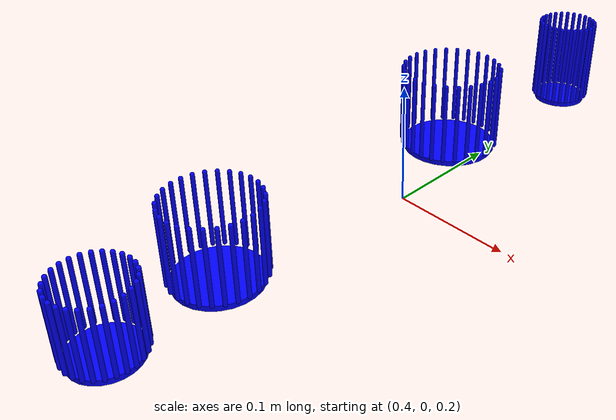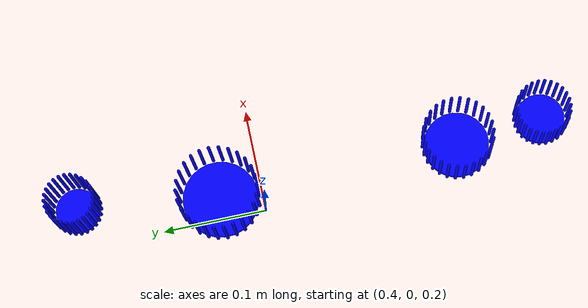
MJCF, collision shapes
<mujoco model="multi_cup_scene">

    <default>
        <default class="cup_collision">
        <geom
            contype="1" conaffinity="1"
            friction="0.2 0.005 0.0001"
            solref="0.01 1"
            solimp="0.95 0.99 0.001 0.5 2"
            condim="3"
            margin="0"
            gap="0"
            rgba="0 0 1 0.2"/>
        </default>
    </default>

  <asset>
    <material name="cup_red" rgba="0.85 0.20 0.20 1"/>
    <mesh name="cup_mesh_1" file="/path/to/Intervention_IL_AR/intervene_base/mujoco_scenes/cups/cup_nontextured.stl" scale="0.9 0.9 0.9"/>
    <material name="cup_green" rgba="0.20 0.75 0.30 1"/>
    <mesh name="cup_mesh_2" file="/path/to/Intervention_IL_AR/intervene_base/mujoco_scenes/cups/cup_nontextured.stl" scale="1.2 1.2 1"/>
    <material name="cup_blue" rgba="0.20 0.45 0.90 1"/>
    <mesh name="cup_mesh_3" file="/path/to/Intervention_IL_AR/intervene_base/mujoco_scenes/cups/cup_nontextured.stl" scale="1.4 1.4 1.1"/>
    <material name="cup_yellow" rgba="0.95 0.80 0.20 1"/>
    <mesh name="cup_mesh_4" file="/path/to/Intervention_IL_AR/intervene_base/mujoco_scenes/cups/cup_nontextured.stl" scale="0.8 0.8 1.15"/>
  </asset>

  <worldbody>
    <body name="cup1" pos="0.45 -0.22 0.24">
      <joint name="cup1_free" type="free"/>
      <geom name="cup1_visual" type="mesh" mesh="cup_mesh_1" material="cup_red" contype="0" conaffinity="0" pos="0 0 0" quat="1 0 0 0"/>
      <geom name="cup1_bottom" type="cylinder" pos="-0.0247487 -0.0512338 0.00143985" quat="0.889113 -0.0195101 -0.000219579 0.457272" size="0.0234366 0.002" class="cup_collision"/>
      <geom name="cup1_wallcap_00" type="capsule" pos="-0.010747 -0.0299984 0.0287677" quat="0.889113 -0.0195101 -0.000219579 0.457272" size="0.0015 0.0242842" class="cup_collision"/>
      <geom name="cup1_wallcap_01" type="capsule" pos="-0.0160211 -0.0271201 0.0285721" quat="0.889113 -0.0195101 -0.000219579 0.457272" size="0.0015 0.0242842" class="cup_collision"/>
      <geom name="cup1_wallcap_02" type="capsule" pos="-0.0218319 -0.0255875 0.0284132" quat="0.889113 -0.0195101 -0.000219579 0.457272" size="0.0015 0.0242842" class="cup_collision"/>
      <geom name="cup1_wallcap_03" type="capsule" pos="-0.0278416 -0.0254897 0.0283002" quat="0.889113 -0.0195101 -0.000219579 0.457272" size="0.0015 0.0242842" class="cup_collision"/>
      <geom name="cup1_wallcap_04" type="capsule" pos="-0.033701 -0.0268324 0.0282396" quat="0.889113 -0.0195101 -0.000219579 0.457272" size="0.0015 0.0242842" class="cup_collision"/>
      <geom name="cup1_wallcap_05" type="capsule" pos="-0.0390695 -0.0295374 0.028235" quat="0.889113 -0.0195101 -0.000219579 0.457272" size="0.0015 0.0242842" class="cup_collision"/>
      <geom name="cup1_wallcap_06" type="capsule" pos="-0.0436353 -0.0334477 0.0282867" quat="0.889113 -0.0195101 -0.000219579 0.457272" size="0.0015 0.0242842" class="cup_collision"/>
      <geom name="cup1_wallcap_07" type="capsule" pos="-0.0471328 -0.038336 0.0283916" quat="0.889113 -0.0195101 -0.000219579 0.457272" size="0.0015 0.0242842" class="cup_collision"/>
      <geom name="cup1_wallcap_08" type="capsule" pos="-0.0493589 -0.0439181 0.0285437" quat="0.889113 -0.0195101 -0.000219579 0.457272" size="0.0015 0.0242842" class="cup_collision"/>
      <geom name="cup1_wallcap_09" type="capsule" pos="-0.0501842 -0.0498697 0.0287341" quat="0.889113 -0.0195101 -0.000219579 0.457272" size="0.0015 0.0242842" class="cup_collision"/>
      <geom name="cup1_wallcap_10" type="capsule" pos="-0.0495607 -0.0558449 0.0289517" quat="0.889113 -0.0195101 -0.000219579 0.457272" size="0.0015 0.0242842" class="cup_collision"/>
      <geom name="cup1_wallcap_11" type="capsule" pos="-0.0475247 -0.0614964 0.0291839" quat="0.889113 -0.0195101 -0.000219579 0.457272" size="0.0015 0.0242842" class="cup_collision"/>
      <geom name="cup1_wallcap_12" type="capsule" pos="-0.0441944 -0.0664958 0.0294173" quat="0.889113 -0.0195101 -0.000219579 0.457272" size="0.0015 0.0242842" class="cup_collision"/>
      <geom name="cup1_wallcap_13" type="capsule" pos="-0.0397635 -0.0705525 0.0296381" quat="0.889113 -0.0195101 -0.000219579 0.457272" size="0.0015 0.0242842" class="cup_collision"/>
      <geom name="cup1_wallcap_14" type="capsule" pos="-0.0344894 -0.0734308 0.0298337" quat="0.889113 -0.0195101 -0.000219579 0.457272" size="0.0015 0.0242842" class="cup_collision"/>
      <geom name="cup1_wallcap_15" type="capsule" pos="-0.0286787 -0.0749633 0.0299927" quat="0.889113 -0.0195101 -0.000219579 0.457272" size="0.0015 0.0242842" class="cup_collision"/>
      <geom name="cup1_wallcap_16" type="capsule" pos="-0.022669 -0.0750612 0.0301057" quat="0.889113 -0.0195101 -0.000219579 0.457272" size="0.0015 0.0242842" class="cup_collision"/>
      <geom name="cup1_wallcap_17" type="capsule" pos="-0.0168096 -0.0737185 0.0301663" quat="0.889113 -0.0195101 -0.000219579 0.457272" size="0.0015 0.0242842" class="cup_collision"/>
      <geom name="cup1_wallcap_18" type="capsule" pos="-0.011441 -0.0710135 0.0301709" quat="0.889113 -0.0195101 -0.000219579 0.457272" size="0.0015 0.0242842" class="cup_collision"/>
      <geom name="cup1_wallcap_19" type="capsule" pos="-0.00687528 -0.0671032 0.0301192" quat="0.889113 -0.0195101 -0.000219579 0.457272" size="0.0015 0.0242842" class="cup_collision"/>
      <geom name="cup1_wallcap_20" type="capsule" pos="-0.00337774 -0.0622149 0.0300143" quat="0.889113 -0.0195101 -0.000219579 0.457272" size="0.0015 0.0242842" class="cup_collision"/>
      <geom name="cup1_wallcap_21" type="capsule" pos="-0.00115163 -0.0566328 0.0298622" quat="0.889113 -0.0195101 -0.000219579 0.457272" size="0.0015 0.0242842" class="cup_collision"/>
      <geom name="cup1_wallcap_22" type="capsule" pos="-0.000326341 -0.0506812 0.0296718" quat="0.889113 -0.0195101 -0.000219579 0.457272" size="0.0015 0.0242842" class="cup_collision"/>
      <geom name="cup1_wallcap_23" type="capsule" pos="-0.00094983 -0.044706 0.0294542" quat="0.889113 -0.0195101 -0.000219579 0.457272" size="0.0015 0.0242842" class="cup_collision"/>
      <geom name="cup1_wallcap_24" type="capsule" pos="-0.00298586 -0.0390545 0.029222" quat="0.889113 -0.0195101 -0.000219579 0.457272" size="0.0015 0.0242842" class="cup_collision"/>
      <geom name="cup1_wallcap_25" type="capsule" pos="-0.00631611 -0.0340551 0.0289886" quat="0.889113 -0.0195101 -0.000219579 0.457272" size="0.0015 0.0242842" class="cup_collision"/>
    </body>
    <body name="cup2" pos="0.45 -0.12 0.24">
      <joint name="cup2_free" type="free"/>
      <geom name="cup2_visual" type="mesh" mesh="cup_mesh_2" material="cup_green" contype="0" conaffinity="0" pos="0 0 0" quat="1 0 0 0"/>
      <geom name="cup2_bottom" type="cylinder" pos="-0.0331027 -0.0681141 0.00137357" quat="0.889113 -0.0195101 -0.000219579 0.457272" size="0.0309155 0.002" class="cup_collision"/>
      <geom name="cup2_wallcap_00" type="capsule" pos="-0.0148081 -0.040687 0.0317667" quat="0.889113 -0.0195101 -0.000219579 0.457272" size="0.0015 0.0274825" class="cup_collision"/>
      <geom name="cup2_wallcap_01" type="capsule" pos="-0.021664 -0.0369455 0.0315125" quat="0.889113 -0.0195101 -0.000219579 0.457272" size="0.0015 0.0274825" class="cup_collision"/>
      <geom name="cup2_wallcap_02" type="capsule" pos="-0.0292175 -0.0349532 0.0313059" quat="0.889113 -0.0195101 -0.000219579 0.457272" size="0.0015 0.0274825" class="cup_collision"/>
      <geom name="cup2_wallcap_03" type="capsule" pos="-0.0370296 -0.0348261 0.031159" quat="0.889113 -0.0195101 -0.000219579 0.457272" size="0.0015 0.0274825" class="cup_collision"/>
      <geom name="cup2_wallcap_04" type="capsule" pos="-0.0446463 -0.0365714 0.0310802" quat="0.889113 -0.0195101 -0.000219579 0.457272" size="0.0015 0.0274825" class="cup_collision"/>
      <geom name="cup2_wallcap_05" type="capsule" pos="-0.051625 -0.0400878 0.0310743" quat="0.889113 -0.0195101 -0.000219579 0.457272" size="0.0015 0.0274825" class="cup_collision"/>
      <geom name="cup2_wallcap_06" type="capsule" pos="-0.05756 -0.0451708 0.0311414" quat="0.889113 -0.0195101 -0.000219579 0.457272" size="0.0015 0.0274825" class="cup_collision"/>
      <geom name="cup2_wallcap_07" type="capsule" pos="-0.0621066 -0.0515251 0.0312778" quat="0.889113 -0.0195101 -0.000219579 0.457272" size="0.0015 0.0274825" class="cup_collision"/>
      <geom name="cup2_wallcap_08" type="capsule" pos="-0.0650003 -0.0587814 0.0314755" quat="0.889113 -0.0195101 -0.000219579 0.457272" size="0.0015 0.0274825" class="cup_collision"/>
      <geom name="cup2_wallcap_09" type="capsule" pos="-0.0660731 -0.066518 0.031723" quat="0.889113 -0.0195101 -0.000219579 0.457272" size="0.0015 0.0274825" class="cup_collision"/>
      <geom name="cup2_wallcap_10" type="capsule" pos="-0.0652626 -0.0742852 0.0320059" quat="0.889113 -0.0195101 -0.000219579 0.457272" size="0.0015 0.0274825" class="cup_collision"/>
      <geom name="cup2_wallcap_11" type="capsule" pos="-0.062616 -0.0816317 0.0323077" quat="0.889113 -0.0195101 -0.000219579 0.457272" size="0.0015 0.0274825" class="cup_collision"/>
      <geom name="cup2_wallcap_12" type="capsule" pos="-0.0582869 -0.0881305 0.0326111" quat="0.889113 -0.0195101 -0.000219579 0.457272" size="0.0015 0.0274825" class="cup_collision"/>
      <geom name="cup2_wallcap_13" type="capsule" pos="-0.0525271 -0.0934038 0.0328982" quat="0.889113 -0.0195101 -0.000219579 0.457272" size="0.0015 0.0274825" class="cup_collision"/>
      <geom name="cup2_wallcap_14" type="capsule" pos="-0.0456712 -0.0971454 0.0331525" quat="0.889113 -0.0195101 -0.000219579 0.457272" size="0.0015 0.0274825" class="cup_collision"/>
      <geom name="cup2_wallcap_15" type="capsule" pos="-0.0381177 -0.0991376 0.0333591" quat="0.889113 -0.0195101 -0.000219579 0.457272" size="0.0015 0.0274825" class="cup_collision"/>
      <geom name="cup2_wallcap_16" type="capsule" pos="-0.0303056 -0.0992648 0.033506" quat="0.889113 -0.0195101 -0.000219579 0.457272" size="0.0015 0.0274825" class="cup_collision"/>
      <geom name="cup2_wallcap_17" type="capsule" pos="-0.0226889 -0.0975194 0.0335847" quat="0.889113 -0.0195101 -0.000219579 0.457272" size="0.0015 0.0274825" class="cup_collision"/>
      <geom name="cup2_wallcap_18" type="capsule" pos="-0.0157102 -0.0940031 0.0335907" quat="0.889113 -0.0195101 -0.000219579 0.457272" size="0.0015 0.0274825" class="cup_collision"/>
      <geom name="cup2_wallcap_19" type="capsule" pos="-0.00977519 -0.08892 0.0335235" quat="0.889113 -0.0195101 -0.000219579 0.457272" size="0.0015 0.0274825" class="cup_collision"/>
      <geom name="cup2_wallcap_20" type="capsule" pos="-0.00522867 -0.0825657 0.0333872" quat="0.889113 -0.0195101 -0.000219579 0.457272" size="0.0015 0.0274825" class="cup_collision"/>
      <geom name="cup2_wallcap_21" type="capsule" pos="-0.00233493 -0.0753094 0.0331895" quat="0.889113 -0.0195101 -0.000219579 0.457272" size="0.0015 0.0274825" class="cup_collision"/>
      <geom name="cup2_wallcap_22" type="capsule" pos="-0.00126212 -0.0675729 0.032942" quat="0.889113 -0.0195101 -0.000219579 0.457272" size="0.0015 0.0274825" class="cup_collision"/>
      <geom name="cup2_wallcap_23" type="capsule" pos="-0.0020726 -0.0598056 0.0326591" quat="0.889113 -0.0195101 -0.000219579 0.457272" size="0.0015 0.0274825" class="cup_collision"/>
      <geom name="cup2_wallcap_24" type="capsule" pos="-0.00471927 -0.0524592 0.0323572" quat="0.889113 -0.0195101 -0.000219579 0.457272" size="0.0015 0.0274825" class="cup_collision"/>
      <geom name="cup2_wallcap_25" type="capsule" pos="-0.00904832 -0.0459604 0.0320539" quat="0.889113 -0.0195101 -0.000219579 0.457272" size="0.0015 0.0274825" class="cup_collision"/>
    </body>
    <body name="cup3" pos="0.45 0.12 0.24">
      <joint name="cup3_free" type="free"/>
      <geom name="cup3_visual" type="mesh" mesh="cup_mesh_3" material="cup_blue" contype="0" conaffinity="0" pos="0 0 0" quat="1 0 0 0"/>
      <geom name="cup3_bottom" type="cylinder" pos="-0.0386526 -0.0794044 0.00130939" quat="0.889113 -0.0195101 -0.000219579 0.457272" size="0.0359014 0.002" class="cup_collision"/>
      <geom name="cup3_wallcap_00" type="capsule" pos="-0.0175155 -0.0478127 0.0348114" quat="0.889113 -0.0195101 -0.000219579 0.457272" size="0.0015 0.0306807" class="cup_collision"/>
      <geom name="cup3_wallcap_01" type="capsule" pos="-0.0254259 -0.0434957 0.034518" quat="0.889113 -0.0195101 -0.000219579 0.457272" size="0.0015 0.0306807" class="cup_collision"/>
      <geom name="cup3_wallcap_02" type="capsule" pos="-0.0341412 -0.041197 0.0342796" quat="0.889113 -0.0195101 -0.000219579 0.457272" size="0.0015 0.0306807" class="cup_collision"/>
      <geom name="cup3_wallcap_03" type="capsule" pos="-0.0431549 -0.0410503 0.0341101" quat="0.889113 -0.0195101 -0.000219579 0.457272" size="0.0015 0.0306807" class="cup_collision"/>
      <geom name="cup3_wallcap_04" type="capsule" pos="-0.0519432 -0.0430641 0.0340192" quat="0.889113 -0.0195101 -0.000219579 0.457272" size="0.0015 0.0306807" class="cup_collision"/>
      <geom name="cup3_wallcap_05" type="capsule" pos="-0.0599953 -0.0471213 0.0340124" quat="0.889113 -0.0195101 -0.000219579 0.457272" size="0.0015 0.0306807" class="cup_collision"/>
      <geom name="cup3_wallcap_06" type="capsule" pos="-0.0668432 -0.0529862 0.0340899" quat="0.889113 -0.0195101 -0.000219579 0.457272" size="0.0015 0.0306807" class="cup_collision"/>
      <geom name="cup3_wallcap_07" type="capsule" pos="-0.0720891 -0.0603179 0.0342472" quat="0.889113 -0.0195101 -0.000219579 0.457272" size="0.0015 0.0306807" class="cup_collision"/>
      <geom name="cup3_wallcap_08" type="capsule" pos="-0.0754279 -0.0686903 0.0344753" quat="0.889113 -0.0195101 -0.000219579 0.457272" size="0.0015 0.0306807" class="cup_collision"/>
      <geom name="cup3_wallcap_09" type="capsule" pos="-0.0766657 -0.0776168 0.0347608" quat="0.889113 -0.0195101 -0.000219579 0.457272" size="0.0015 0.0306807" class="cup_collision"/>
      <geom name="cup3_wallcap_10" type="capsule" pos="-0.0757306 -0.0865788 0.0350873" quat="0.889113 -0.0195101 -0.000219579 0.457272" size="0.0015 0.0306807" class="cup_collision"/>
      <geom name="cup3_wallcap_11" type="capsule" pos="-0.0726768 -0.0950552 0.0354356" quat="0.889113 -0.0195101 -0.000219579 0.457272" size="0.0015 0.0306807" class="cup_collision"/>
      <geom name="cup3_wallcap_12" type="capsule" pos="-0.0676819 -0.102554 0.0357856" quat="0.889113 -0.0195101 -0.000219579 0.457272" size="0.0015 0.0306807" class="cup_collision"/>
      <geom name="cup3_wallcap_13" type="capsule" pos="-0.0610361 -0.108638 0.0361169" quat="0.889113 -0.0195101 -0.000219579 0.457272" size="0.0015 0.0306807" class="cup_collision"/>
      <geom name="cup3_wallcap_14" type="capsule" pos="-0.0531258 -0.112955 0.0364102" quat="0.889113 -0.0195101 -0.000219579 0.457272" size="0.0015 0.0306807" class="cup_collision"/>
      <geom name="cup3_wallcap_15" type="capsule" pos="-0.0444105 -0.115254 0.0366486" quat="0.889113 -0.0195101 -0.000219579 0.457272" size="0.0015 0.0306807" class="cup_collision"/>
      <geom name="cup3_wallcap_16" type="capsule" pos="-0.0353968 -0.1154 0.0368181" quat="0.889113 -0.0195101 -0.000219579 0.457272" size="0.0015 0.0306807" class="cup_collision"/>
      <geom name="cup3_wallcap_17" type="capsule" pos="-0.0266085 -0.113387 0.036909" quat="0.889113 -0.0195101 -0.000219579 0.457272" size="0.0015 0.0306807" class="cup_collision"/>
      <geom name="cup3_wallcap_18" type="capsule" pos="-0.0185564 -0.10933 0.0369159" quat="0.889113 -0.0195101 -0.000219579 0.457272" size="0.0015 0.0306807" class="cup_collision"/>
      <geom name="cup3_wallcap_19" type="capsule" pos="-0.0117085 -0.103465 0.0368384" quat="0.889113 -0.0195101 -0.000219579 0.457272" size="0.0015 0.0306807" class="cup_collision"/>
      <geom name="cup3_wallcap_20" type="capsule" pos="-0.00646263 -0.0961329 0.036681" quat="0.889113 -0.0195101 -0.000219579 0.457272" size="0.0015 0.0306807" class="cup_collision"/>
      <geom name="cup3_wallcap_21" type="capsule" pos="-0.00312379 -0.0877605 0.0364529" quat="0.889113 -0.0195101 -0.000219579 0.457272" size="0.0015 0.0306807" class="cup_collision"/>
      <geom name="cup3_wallcap_22" type="capsule" pos="-0.00188597 -0.078834 0.0361674" quat="0.889113 -0.0195101 -0.000219579 0.457272" size="0.0015 0.0306807" class="cup_collision"/>
      <geom name="cup3_wallcap_23" type="capsule" pos="-0.00282112 -0.0698721 0.035841" quat="0.889113 -0.0195101 -0.000219579 0.457272" size="0.0015 0.0306807" class="cup_collision"/>
      <geom name="cup3_wallcap_24" type="capsule" pos="-0.00587488 -0.0613956 0.0354926" quat="0.889113 -0.0195101 -0.000219579 0.457272" size="0.0015 0.0306807" class="cup_collision"/>
      <geom name="cup3_wallcap_25" type="capsule" pos="-0.0108698 -0.0538972 0.0351427" quat="0.889113 -0.0195101 -0.000219579 0.457272" size="0.0015 0.0306807" class="cup_collision"/>
    </body>
    <body name="cup4" pos="0.45 0.22 0.24">
      <joint name="cup4_free" type="free"/>
      <geom name="cup4_visual" type="mesh" mesh="cup_mesh_4" material="cup_yellow" contype="0" conaffinity="0" pos="0 0 0" quat="1 0 0 0"/>
      <geom name="cup4_bottom" type="cylinder" pos="-0.0217988 -0.0459196 0.00129204" quat="0.889113 -0.0195101 -0.000219579 0.457272" size="0.0209437 0.002" class="cup_collision"/>
      <geom name="cup4_wallcap_00" type="capsule" pos="-0.00939334 -0.0264356 0.036653" quat="0.889113 -0.0195101 -0.000219579 0.457272" size="0.0015 0.0322799" class="cup_collision"/>
      <geom name="cup4_wallcap_01" type="capsule" pos="-0.0141402 -0.023845 0.0364769" quat="0.889113 -0.0195101 -0.000219579 0.457272" size="0.0015 0.0322799" class="cup_collision"/>
      <geom name="cup4_wallcap_02" type="capsule" pos="-0.01937 -0.0224656 0.0363339" quat="0.889113 -0.0195101 -0.000219579 0.457272" size="0.0015 0.0322799" class="cup_collision"/>
      <geom name="cup4_wallcap_03" type="capsule" pos="-0.0247789 -0.0223776 0.0362322" quat="0.889113 -0.0195101 -0.000219579 0.457272" size="0.0015 0.0322799" class="cup_collision"/>
      <geom name="cup4_wallcap_04" type="capsule" pos="-0.0300525 -0.023586 0.0361776" quat="0.889113 -0.0195101 -0.000219579 0.457272" size="0.0015 0.0322799" class="cup_collision"/>
      <geom name="cup4_wallcap_05" type="capsule" pos="-0.0348844 -0.0260206 0.0361735" quat="0.889113 -0.0195101 -0.000219579 0.457272" size="0.0015 0.0322799" class="cup_collision"/>
      <geom name="cup4_wallcap_06" type="capsule" pos="-0.0389937 -0.02954 0.03622" quat="0.889113 -0.0195101 -0.000219579 0.457272" size="0.0015 0.0322799" class="cup_collision"/>
      <geom name="cup4_wallcap_07" type="capsule" pos="-0.0421416 -0.0339396 0.0363144" quat="0.889113 -0.0195101 -0.000219579 0.457272" size="0.0015 0.0322799" class="cup_collision"/>
      <geom name="cup4_wallcap_08" type="capsule" pos="-0.0441451 -0.0389637 0.0364513" quat="0.889113 -0.0195101 -0.000219579 0.457272" size="0.0015 0.0322799" class="cup_collision"/>
      <geom name="cup4_wallcap_09" type="capsule" pos="-0.0448879 -0.0443203 0.0366227" quat="0.889113 -0.0195101 -0.000219579 0.457272" size="0.0015 0.0322799" class="cup_collision"/>
      <geom name="cup4_wallcap_10" type="capsule" pos="-0.0443267 -0.0496981 0.0368185" quat="0.889113 -0.0195101 -0.000219579 0.457272" size="0.0015 0.0322799" class="cup_collision"/>
      <geom name="cup4_wallcap_11" type="capsule" pos="-0.0424943 -0.0547846 0.0370276" quat="0.889113 -0.0195101 -0.000219579 0.457272" size="0.0015 0.0322799" class="cup_collision"/>
      <geom name="cup4_wallcap_12" type="capsule" pos="-0.0394969 -0.0592842 0.0372376" quat="0.889113 -0.0195101 -0.000219579 0.457272" size="0.0015 0.0322799" class="cup_collision"/>
      <geom name="cup4_wallcap_13" type="capsule" pos="-0.035509 -0.0629353 0.0374364" quat="0.889113 -0.0195101 -0.000219579 0.457272" size="0.0015 0.0322799" class="cup_collision"/>
      <geom name="cup4_wallcap_14" type="capsule" pos="-0.0307621 -0.0655259 0.0376124" quat="0.889113 -0.0195101 -0.000219579 0.457272" size="0.0015 0.0322799" class="cup_collision"/>
      <geom name="cup4_wallcap_15" type="capsule" pos="-0.0255323 -0.0669053 0.0377555" quat="0.889113 -0.0195101 -0.000219579 0.457272" size="0.0015 0.0322799" class="cup_collision"/>
      <geom name="cup4_wallcap_16" type="capsule" pos="-0.0201234 -0.0669933 0.0378572" quat="0.889113 -0.0195101 -0.000219579 0.457272" size="0.0015 0.0322799" class="cup_collision"/>
      <geom name="cup4_wallcap_17" type="capsule" pos="-0.0148498 -0.0657849 0.0379117" quat="0.889113 -0.0195101 -0.000219579 0.457272" size="0.0015 0.0322799" class="cup_collision"/>
      <geom name="cup4_wallcap_18" type="capsule" pos="-0.0100179 -0.0633503 0.0379158" quat="0.889113 -0.0195101 -0.000219579 0.457272" size="0.0015 0.0322799" class="cup_collision"/>
      <geom name="cup4_wallcap_19" type="capsule" pos="-0.00590865 -0.0598309 0.0378693" quat="0.889113 -0.0195101 -0.000219579 0.457272" size="0.0015 0.0322799" class="cup_collision"/>
      <geom name="cup4_wallcap_20" type="capsule" pos="-0.00276076 -0.0554313 0.0377749" quat="0.889113 -0.0195101 -0.000219579 0.457272" size="0.0015 0.0322799" class="cup_collision"/>
      <geom name="cup4_wallcap_21" type="capsule" pos="-0.000757199 -0.0504072 0.037638" quat="0.889113 -0.0195101 -0.000219579 0.457272" size="0.0015 0.0322799" class="cup_collision"/>
      <geom name="cup4_wallcap_22" type="capsule" pos="-1.44149e-05 -0.0450506 0.0374667" quat="0.889113 -0.0195101 -0.000219579 0.457272" size="0.0015 0.0322799" class="cup_collision"/>
      <geom name="cup4_wallcap_23" type="capsule" pos="-0.000575573 -0.0396728 0.0372708" quat="0.889113 -0.0195101 -0.000219579 0.457272" size="0.0015 0.0322799" class="cup_collision"/>
      <geom name="cup4_wallcap_24" type="capsule" pos="-0.00240806 -0.0345863 0.0370618" quat="0.889113 -0.0195101 -0.000219579 0.457272" size="0.0015 0.0322799" class="cup_collision"/>
      <geom name="cup4_wallcap_25" type="capsule" pos="-0.00540538 -0.0300867 0.0368518" quat="0.889113 -0.0195101 -0.000219579 0.457272" size="0.0015 0.0322799" class="cup_collision"/>
    </body>
  </worldbody>
</mujoco>
